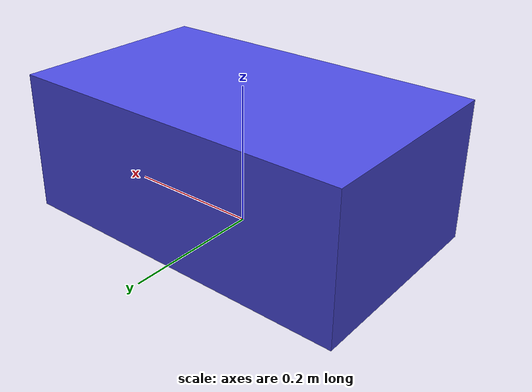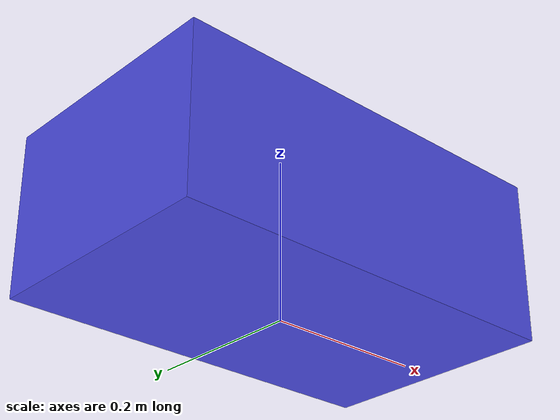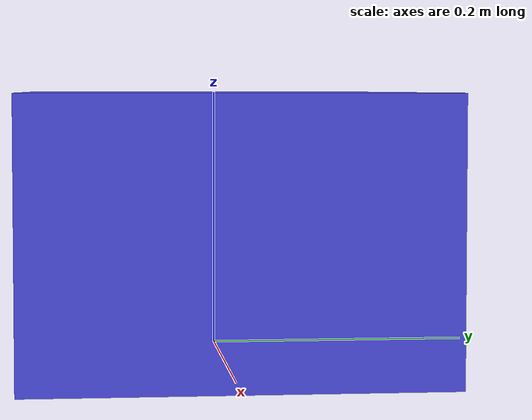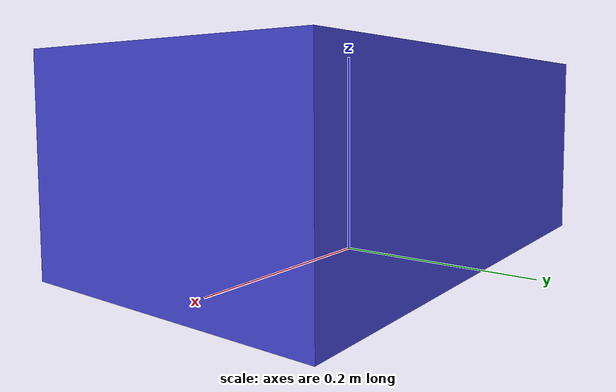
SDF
<?xml version="1.0" ?>
<sdf version="1.8">
  <model name="enhanced_om1_robot">
    <link name="base_link">
      <pose>0 0 0.1 0 0 0</pose>
      <inertial>
        <mass>10.0</mass>
        <inertia>
          <ixx>0.1</ixx>
          <ixy>0</ixy>
          <ixz>0</ixz>
          <iyy>0.1</iyy>
          <iyz>0</iyz>
          <izz>0.1</izz>
        </inertia>
      </inertial>

      <visual name="visual">
        <geometry>
          <box>
            <size>0.5 0.3 0.2</size>
          </box>
        </geometry>
        <material>
          <ambient>0.3 0.3 0.9 1</ambient>
          <diffuse>0.3 0.3 0.9 1</diffuse>
        </material>
      </visual>

      <collision name="collision">
        <geometry>
          <box>
            <size>0.5 0.3 0.2</size>
          </box>
        </geometry>
      </collision>

      <sensor name="camera" type="camera">
        <pose>0.25 0 0.1 0 0 0</pose>
        <camera>
          <horizontal_fov>1.047</horizontal_fov>
          <image>
            <width>640</width>
            <height>480</height>
          </image>
          <clip>
            <near>0.1</near>
            <far>100</far>
          </clip>
        </camera>
        <always_on>1</always_on>
        <update_rate>30</update_rate>
        <visualize>true</visualize>
        <topic>camera</topic>
      </sensor>

      <sensor name="lidar" type="gpu_lidar">
        <pose>0 0 0.15 0 0 0</pose>
        <lidar>
          <scan>
            <horizontal>
              <samples>640</samples>
              <resolution>1</resolution>
              <min_angle>-3.14159</min_angle>
              <max_angle>3.14159</max_angle>
            </horizontal>
          </scan>
          <range>
            <min>0.1</min>
            <max>30.0</max>
            <resolution>0.01</resolution>
          </range>
        </lidar>
        <always_on>1</always_on>
        <update_rate>10</update_rate>
        <visualize>true</visualize>
        <topic>lidar</topic>
      </sensor>

      <sensor name="imu" type="imu">
        <always_on>1</always_on>
        <update_rate>100</update_rate>
        <topic>imu</topic>
      </sensor>

    </link>
  </model>
</sdf>
